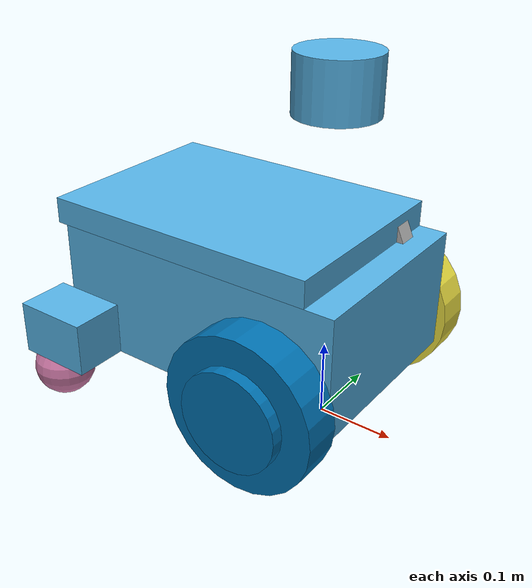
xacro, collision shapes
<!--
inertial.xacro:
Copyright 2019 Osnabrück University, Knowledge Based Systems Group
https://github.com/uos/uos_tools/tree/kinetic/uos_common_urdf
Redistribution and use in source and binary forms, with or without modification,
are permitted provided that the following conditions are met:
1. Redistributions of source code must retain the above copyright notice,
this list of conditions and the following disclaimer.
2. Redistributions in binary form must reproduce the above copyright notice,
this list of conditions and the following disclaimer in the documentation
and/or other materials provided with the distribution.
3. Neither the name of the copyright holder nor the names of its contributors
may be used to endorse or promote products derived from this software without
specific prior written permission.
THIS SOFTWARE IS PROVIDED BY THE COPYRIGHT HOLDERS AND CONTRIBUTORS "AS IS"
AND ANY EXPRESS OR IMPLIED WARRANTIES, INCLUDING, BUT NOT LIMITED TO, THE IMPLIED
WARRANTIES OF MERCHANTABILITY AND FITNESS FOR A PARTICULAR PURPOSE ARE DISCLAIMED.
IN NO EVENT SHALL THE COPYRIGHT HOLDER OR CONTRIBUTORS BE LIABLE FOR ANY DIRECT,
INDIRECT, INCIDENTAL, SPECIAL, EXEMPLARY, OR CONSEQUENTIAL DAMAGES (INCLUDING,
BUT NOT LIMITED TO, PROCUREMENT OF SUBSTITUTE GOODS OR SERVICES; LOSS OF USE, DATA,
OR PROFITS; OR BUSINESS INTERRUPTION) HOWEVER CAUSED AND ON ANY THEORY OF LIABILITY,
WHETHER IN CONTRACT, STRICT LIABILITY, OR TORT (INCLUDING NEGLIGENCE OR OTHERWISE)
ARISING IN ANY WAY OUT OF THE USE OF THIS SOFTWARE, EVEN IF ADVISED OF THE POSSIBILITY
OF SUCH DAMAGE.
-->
<?xml version="1.0"?>
<robot xmlns:xacro="http://wiki.ros.org/xacro" name="magni">

  <xacro:arg name="raspicam_mount" default="forward"/>
  <xacro:property name="raspicam_mount" value="$(arg raspicam_mount)"/>

  <xacro:arg name="sonars_installed" default="false"/>
  <xacro:property name="sonars_installed" value="$(arg sonars_installed)"/>

  <xacro:arg name="camera_extrinsics_file" default="-"/>
  <xacro:property name="camera_extrinsics_file" value="$(arg camera_extrinsics_file)"/>

  <xacro:arg name="lidar_installed" default="false"/>
  <xacro:property name="lidar_installed" value="$(arg lidar_installed)"/>

  <xacro:arg name="velodyne_installed" default="true"/>
  <xacro:property name="velodyne_installed" value="$(arg velodyne_installed)"/>

  <xacro:arg name="kinect_installed" default="false"/>
  <xacro:property name="kinect_installed" value="$(arg kinect_installed)"/>

  <xacro:property name="wheel_r" value="0.1" />
  <xacro:property name="wheel_xpos" value="0.11" />

  <xacro:include filename="$(find velodyne_description)/urdf/VLP-16.urdf.xacro" />
  <xacro:include filename="$(find magni_description)/urdf/magni.transmission.xacro" />
  <xacro:include filename="$(find magni_description)/urdf/magni.gazebo.xacro" />
  <xacro:include filename="$(find magni_description)/urdf/inertial.xacro" />
  <xacro:include filename="$(find magni_description)/urdf/sensors/sonar_hc-sr04.xacro" />
  <xacro:include filename="$(find magni_description)/urdf/sensors/raspi_camera.xacro" />
  <xacro:include filename="$(find magni_description)/urdf/sensors/hokuyo_lidar.xacro" />
  <xacro:include filename="$(find magni_description)/urdf/magni.ros2_control.xacro" />

  <!-- First link -->
  <link name="base_footprint"/>

  <!-- Robot base_link -->
  <link name="base_link">
    <visual>
      <origin xyz="${-wheel_xpos} 0 ${-wheel_r+0.071}" rpy="0 0 0" />
      <geometry>
        <mesh filename="package://magni_description/meshes/magni_body.dae" />
      </geometry>
    </visual>

    <visual>
      <origin xyz="${-wheel_xpos-0.169} 0.17 ${-wheel_r+0.09}" rpy="0 0 ${pi}" />
      <geometry>
        <mesh filename="package://magni_description/meshes/caster_wheel.dae" />
      </geometry>
    </visual>

    <visual>
      <origin xyz="${-wheel_xpos-0.169} -0.17 ${-wheel_r+0.09}" rpy="0 0 ${pi}" />
      <geometry>
        <mesh filename="package://magni_description/meshes/caster_wheel.dae" />
      </geometry>
    </visual>

    <collision>
      <origin xyz="${-wheel_xpos} 0 ${-wheel_r+0.151}" rpy="0 0 0" />
      <geometry>
        <box size="0.398 0.268 0.160"/>
      </geometry>
    </collision>

    <collision>
      <origin xyz="${-wheel_xpos-0.026} 0 ${-wheel_r+0.248}" rpy="0 0 0" />
      <geometry>
        <box size="0.375 0.268 0.034"/>
      </geometry>
    </collision>

    <collision>
      <origin xyz="${-wheel_xpos-0.169} 0.169 ${-wheel_r+0.106}" rpy="0 0 0" />
      <geometry>
        <box size="0.1 0.07 0.07"/>
      </geometry>
    </collision>

    <collision>
      <origin xyz="${-wheel_xpos-0.169} -0.169 ${-wheel_r+0.106}" rpy="0 0 0" />
      <geometry>
        <box size="0.1 0.07 0.07"/>
      </geometry>
    </collision>

    <xacro:box_inertial_with_origin  x="0.398" y="0.221" z="0.150" mass="10.0">
      <origin xyz="-0.15 0 0.03" rpy="0 0 0" />
    </xacro:box_inertial_with_origin>
  </link>

  <!-- Fixed offset from the floor to the center of the wheels -->
  <joint name="base_footprint_joint" type="fixed">
    <parent link="base_footprint"/>
    <child link="base_link"/>
    <origin xyz="0 0 ${wheel_r}" rpy="0 0 0"/>
  </joint>

  <!-- Place the batteries in the robot -->
  <xacro:property name = "batt_width"  value = "${5.14*0.0254}"/>
  <xacro:property name = "batt_length" value = "${7.72*0.0254}"/>
  <xacro:property name = "batt_height" value = "${6.22*0.0254}"/>
  <xacro:property name = "batt_mass"   value = "22.45"/>

  <link name = "batteries">
    <xacro:box_inertial_with_origin x="${2*batt_width}" y="${batt_length}" z="${batt_height}" mass="${batt_mass}">
      <origin xyz = "0 0 0" rpy = "0 0 0"/>
    </xacro:box_inertial_with_origin>
  </link>

  <joint name = "battery_to_base_link" type = "fixed">
    <parent link = "base_link"/>
    <child  link = "batteries"/>
    <origin  xyz = "-0.15 0 ${batt_height/2}"/>
  </joint>

  <!-- Macro for defining wheels -->
  <xacro:macro name="wheel" params="prefix reflect">
    <link name="${prefix}_wheel">
      <visual>
        <origin xyz="${-0.071*reflect} 0 0" rpy="0 ${(reflect-1)*pi/2} 0" />
        <geometry>
          <mesh filename="package://magni_description/meshes/front_wheel.dae" />
        </geometry>
      </visual>

      <collision>
        <origin xyz="0 0 0" rpy="0 ${pi/2} 0" />
        <geometry>
          <cylinder radius="${wheel_r}" length="0.05"/>
        </geometry>
      </collision>

      <collision>
        <origin xyz="${0.033*reflect} 0 0" rpy="0 ${pi/2} 0" />
        <geometry>
          <cylinder radius="0.064" length="0.016"/>
        </geometry>
      </collision>

      <xacro:cylinder_inertial_with_origin radius="${wheel_r}" length="0.05" mass="3.34">
        <origin xyz="0 0 0" rpy="0 ${pi/2} 0" />
      </xacro:cylinder_inertial_with_origin>

    </link>
    <joint name="${prefix}_wheel_joint" type="continuous">
      <axis xyz="1 0 0" rpy="0 0 0" />
      <parent link="base_link"/>
      <child link="${prefix}_wheel"/>
      <origin xyz="0 ${0.163*reflect} 0" rpy="0 0 ${pi/2}"/>
    </joint>
  </xacro:macro>

  <xacro:wheel prefix="left" reflect="1"/>
  <xacro:wheel prefix="right" reflect="-1"/>

  <!-- Macro for defining caster wheels -->
  <xacro:macro name="caster_wheel" params="prefix reflect">
    <link name="${prefix}_caster_wheel">
      <collision>
        <origin xyz="${-wheel_xpos-0.19} ${reflect*0.169} ${-wheel_r+0.0435}" rpy="0 0 0" />
        <geometry>
          <sphere radius="0.04"/>
        </geometry>
      </collision>
    </link>

    <joint name="${prefix}_caster_wheel_joint" type="fixed">
      <parent link="base_link"/>
      <child link="${prefix}_caster_wheel"/>
    </joint>
  </xacro:macro>

  <xacro:caster_wheel prefix="left" reflect="1"/>
  <xacro:caster_wheel prefix="right" reflect="-1"/>

  <!-- Define all sonars, if sonars_installed set to 1 -->
  <xacro:if value="${sonars_installed}">
    <xacro:sonar_hc-sr04 name="sonar_0" connected_to="base_link">
      <origin xyz="0.01 -0.14 0.15" rpy="0 0 ${-pi/2}"/>
    </xacro:sonar_hc-sr04>

    <xacro:sonar_hc-sr04 name="sonar_1" connected_to="base_link">
      <origin xyz="0.08 -0.07 0.15" rpy="0 0 0.785"/>
    </xacro:sonar_hc-sr04>

    <xacro:sonar_hc-sr04 name="sonar_2" connected_to="base_link">
      <origin xyz="0.08 -0.01 0.15" rpy="0 0 -0.785"/>
    </xacro:sonar_hc-sr04>

    <xacro:sonar_hc-sr04 name="sonar_3" connected_to="base_link">
      <origin xyz="0.08 0.04 0.15" rpy="0 0 0"/>
    </xacro:sonar_hc-sr04>

    <xacro:sonar_hc-sr04 name="sonar_4" connected_to="base_link">
      <origin xyz="0.01 0.14 0.15" rpy="0 0 ${pi/2}"/>
    </xacro:sonar_hc-sr04>
  </xacro:if>

  <!-- If we are given an extrinsics calibration use that instead of the pre-configured pose -->
  <xacro:if value="${camera_extrinsics_file != '-'}">
    <xacro:property name="cam_extrinsics" value="${load_yaml(camera_extrinsics_file)}"/>
    <xacro:property name="cam_position" value="${cam_extrinsics['position']}"/>
    <xacro:property name="cam_orientation" value="${cam_extrinsics['orientation']}"/>

    <xacro:raspi_camera name="raspicam" connected_to="base_link">
      <origin xyz="${cam_position['x']} ${cam_position['y']} ${cam_position['z']}"
        rpy="${cam_orientation['r']} ${cam_orientation['p']} ${cam_orientation['y']}"/>
    </xacro:raspi_camera>
  </xacro:if>

  <xacro:if value="${camera_extrinsics_file == '-'}">

    <!-- Define raspicam based on the raspicam_mount argument -->
    <!-- forward  Forward and tilted slightly upwards         -->
    <!-- upward   Pointing straight up                        -->
    <!-- downward High on post and pointing 45 degree down    -->
    <!-- ahead    Directly facing forward with no tilt        -->
    <xacro:if value="${raspicam_mount == 'forward'}">
      <xacro:raspi_camera name="raspicam" connected_to="base_link">
        <origin xyz="0.050 0.085 0.135" rpy="1.15191731 0 1.5707"/>
      </xacro:raspi_camera>
    </xacro:if>

    <xacro:if value="${raspicam_mount == 'upward'}">
      <xacro:raspi_camera name="raspicam" connected_to="base_link">
        <origin xyz="0.020 0.115 0.155" rpy="0 0 ${pi}"/>
      </xacro:raspi_camera>
    </xacro:if>

    <xacro:if value="${raspicam_mount == 'downward'}">
      <xacro:raspi_camera name="raspicam" connected_to="base_link">
        <origin xyz="0.1 0.090 0.145" rpy="3.14159 -1.25 0.0"/>
      </xacro:raspi_camera>
    </xacro:if>

    <xacro:if value="${raspicam_mount == 'ahead'}">
      <xacro:raspi_camera name="raspicam" connected_to="base_link">
        <origin xyz="0.095 0.061 0.10" rpy="0 1.5707 0"/>
      </xacro:raspi_camera>
    </xacro:if>

  </xacro:if>

  <xacro:if value="${lidar_installed}">
    <xacro:hokuyo_lidar name="laser" connected_to="base_link">
      <origin xyz="0 0.0 0.2" rpy="0 0 0"/>
    </xacro:hokuyo_lidar>
  </xacro:if>

  <xacro:if value="${kinect_installed}">
    <xacro:sensor_d435  parent="base_link">
      <origin xyz="0.095 0.061 0.1" rpy="0 0 0"/>
    </xacro:sensor_d435>
  </xacro:if>

  <xacro:if value="${velodyne_installed}">
    <xacro:VLP-16 name="velodyne" gpu="true" min_range="0.10" collision_range="0.07">
        <origin xyz="0 0.0 0.3" rpy="0 0 0"/>
    </xacro:VLP-16>
  </xacro:if>

  <xacro:magni_ros2_control name="magni" prefix=""/>

</robot>

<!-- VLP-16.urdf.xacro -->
<robot xmlns:xacro="http://www.ros.org/wiki/xacro" name="VLP-16">
  <xacro:property name="M_PI" value="3.1415926535897931" />
  <xacro:macro name="VLP-16" params="*origin is_sim:=true parent:=base_link name:=velodyne tf_prefix:='' topic:=/velodyne_points organize_cloud:=false hz:=10 lasers:=16 samples:=1875 collision_range:=0.3 min_range:=0.0 max_range:=100.0 noise:=0.008 min_angle:=-${M_PI} max_angle:=${M_PI} gpu:=false">

    <joint name="${name}_base_mount_joint" type="fixed">
      <xacro:insert_block name="origin" />
      <parent link="${parent}"/>
      <child link="${name}_base_link"/>
    </joint>

    <link name="${name}_base_link">
      <inertial>
        <mass value="0.83"/>
        <origin xyz="0 0 0.03585"/>
        <inertia ixx="${(0.83 * (3.0*0.0516*0.0516 + 0.0717*0.0717)) / 12.0}" ixy="0" ixz="0"
          iyy="${(0.83 * (3.0*0.0516*0.0516 + 0.0717*0.0717)) / 12.0}" iyz="0"
          izz="${0.5 * 0.83 * (0.0516*0.0516)}"/>
      </inertial>
      <visual>
        <geometry>
          <mesh filename="package://velodyne_description/meshes/VLP16_base_1.dae" />
        </geometry>
      </visual>
      <visual>
        <geometry>
          <mesh filename="package://velodyne_description/meshes/VLP16_base_2.dae" />
        </geometry>
      </visual>
      <collision>
        <origin rpy="0 0 0" xyz="0 0 0.03585"/>
        <geometry>
          <cylinder radius="0.0516" length="0.0717"/>
        </geometry>
      </collision>
    </link>

    <joint name="${name}_base_scan_joint" type="fixed" >
      <origin xyz="0 0 0.0377" rpy="0 0 0" />
      <parent link="${name}_base_link" />
      <child link="${name}"/>
    </joint>

    <link name="${name}">
      <inertial>
        <mass value="0.01"/>
        <origin xyz="0 0 0"/>
        <inertia ixx="1e-7" ixy="0" ixz="0" iyy="1e-7" iyz="0" izz="1e-7"/>
      </inertial>
      <visual>
        <origin xyz="0 0 -0.0377" />
        <geometry>
          <mesh filename="package://velodyne_description/meshes/VLP16_scan.dae" />
        </geometry>
      </visual>
      <collision>
        <geometry>
          <sphere radius="0"/>
        </geometry>
      </collision>
    </link>

    <!-- Gazebo requires the velodyne_gazebo_plugins package -->
    <xacro:if value="${is_sim}">
        <gazebo reference="${name}">
            <xacro:if value="${gpu}">
                <sensor type="gpu_ray" name="${name}-VLP16">
                <pose>0 0 0 0 0 0</pose>
                <visualize>false</visualize>
                <update_rate>${hz}</update_rate>
                <ray>
                    <scan>
                    <horizontal>
                        <samples>${samples}</samples>
                        <resolution>1</resolution>
                        <min_angle>${min_angle}</min_angle>
                        <max_angle>${max_angle}</max_angle>
                    </horizontal>
                    <vertical>
                        <samples>${lasers}</samples>
                        <resolution>1</resolution>
                        <min_angle>-${15.0*M_PI/180.0}</min_angle>
                        <max_angle> ${15.0*M_PI/180.0}</max_angle>
                    </vertical>
                    </scan>
                    <range>
                    <min>${collision_range}</min>
                    <max>${max_range+1}</max>
                    <resolution>0.001</resolution>
                    </range>
                    <noise>
                    <type>gaussian</type>
                    <mean>0.0</mean>
                    <stddev>0.0</stddev>
                    </noise>
                </ray>
                <plugin name="gazebo_ros_laser_controller" filename="libgazebo_ros_velodyne_laser.so">
                    <ros>
                    <namespace>/${name}</namespace>
                    <remapping>~/out:=${topic}</remapping>
                    </ros>
                    <tf_prefix>${tf_prefix}</tf_prefix>
                    <frame_name>${name}</frame_name>
                    <organize_cloud>${organize_cloud}</organize_cloud>
                    <min_range>${min_range}</min_range>
                    <max_range>${max_range}</max_range>
                    <gaussian_noise>${noise}</gaussian_noise>
                </plugin>
                </sensor>
            </xacro:if>
            <xacro:unless value="${gpu}">
                <sensor type="ray" name="${name}-VLP16">
                <pose>0 0 0 0 0 0</pose>
                <visualize>false</visualize>
                <update_rate>${hz}</update_rate>
                <ray>
                    <scan>
                    <horizontal>
                        <samples>${samples}</samples>
                        <resolution>1</resolution>
                        <min_angle>${min_angle}</min_angle>
                        <max_angle>${max_angle}</max_angle>
                    </horizontal>
                    <vertical>
                        <samples>${lasers}</samples>
                        <resolution>1</resolution>
                        <min_angle>-${15.0*M_PI/180.0}</min_angle>
                        <max_angle> ${15.0*M_PI/180.0}</max_angle>
                    </vertical>
                    </scan>
                    <range>
                    <min>${collision_range}</min>
                    <max>${max_range+1}</max>
                    <resolution>0.001</resolution>
                    </range>
                    <noise>
                    <type>gaussian</type>
                    <mean>0.0</mean>
                    <stddev>0.0</stddev>
                    </noise>
                </ray>
                <plugin name="gazebo_ros_laser_controller" filename="libgazebo_ros_velodyne_laser.so">
                    <ros>
                    <namespace>/${name}</namespace>
                    <remapping>~/out:=${topic}</remapping>
                    </ros>
                    <tf_prefix>${tf_prefix}</tf_prefix>
                    <frame_name>${name}</frame_name>
                    <organize_cloud>${organize_cloud}</organize_cloud>
                    <min_range>${min_range}</min_range>
                    <max_range>${max_range}</max_range>
                    <gaussian_noise>${noise}</gaussian_noise>
                </plugin>
                </sensor>
            </xacro:unless>
        </gazebo>
    </xacro:if>

  </xacro:macro>
</robot>

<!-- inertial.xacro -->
<robot xmlns:xacro="http://wiki.ros.org/xacro">
    <property name="M_PI" value="3.1415926535897931" />

    <!-- see https://secure.wikimedia.org/wikipedia/en/wiki/List_of_moment_of_inertia_tensors -->

    <!-- #################### versions without origin #################### -->
    <xacro:macro name="sphere_inertial" params="radius mass">
        <inertial>
            <mass value="${mass}" />
            <origin xyz="0 0 0" />
            <inertia ixx="${0.4 * mass * radius * radius}" ixy="0.0" ixz="0.0"
                     iyy="${0.4 * mass * radius * radius}" iyz="0.0"
                     izz="${0.4 * mass * radius * radius}" />
        </inertial>
    </xacro:macro>

    <xacro:macro name="cylinder_inertial" params="radius length mass">
        <inertial>
            <mass value="${mass}" />
            <origin xyz="0 0 0" />
            <inertia ixx="${0.0833333 * mass * (3 * radius * radius + length * length)}" ixy="0.0" ixz="0.0"
                     iyy="${0.0833333 * mass * (3 * radius * radius + length * length)}" iyz="0.0"
                     izz="${0.5 * mass * radius * radius}" />
        </inertial>
    </xacro:macro>

    <xacro:macro name="box_inertial" params="x y z mass">
        <inertial>
            <mass value="${mass}" />
            <origin xyz="0 0 0" />
            <inertia ixx="${0.0833333 * mass * (y*y + z*z)}" ixy="0.0" ixz="0.0"
                     iyy="${0.0833333 * mass * (x*x + z*z)}" iyz="0.0"
                     izz="${0.0833333 * mass * (x*x + y*y)}" />
        </inertial>
    </xacro:macro>

    <!-- #################### versions with origin #################### -->
    <xacro:macro name="sphere_inertial_with_origin" params="radius mass *origin">
        <inertial>
            <mass value="${mass}" />
            <xacro:insert_block name="origin" />
            <inertia ixx="${0.4 * mass * radius * radius}" ixy="0.0" ixz="0.0"
                     iyy="${0.4 * mass * radius * radius}" iyz="0.0"
                     izz="${0.4 * mass * radius * radius}" />
        </inertial>
    </xacro:macro>

    <xacro:macro name="cylinder_inertial_with_origin" params="radius length mass *origin">
        <inertial>
            <mass value="${mass}" />
            <xacro:insert_block name="origin" />
            <inertia ixx="${0.0833333 * mass * (3 * radius * radius + length * length)}" ixy="0.0" ixz="0.0"
                     iyy="${0.0833333 * mass * (3 * radius * radius + length * length)}" iyz="0.0"
                     izz="${0.5 * mass * radius * radius}" />
        </inertial>
    </xacro:macro>

    <xacro:macro name="box_inertial_with_origin" params="x y z mass *origin">
        <inertial>
            <mass value="${mass}" />
            <xacro:insert_block name="origin" />
            <inertia ixx="${0.0833333 * mass * (y*y + z*z)}" ixy="0.0" ixz="0.0"
                     iyy="${0.0833333 * mass * (x*x + z*z)}" iyz="0.0"
                     izz="${0.0833333 * mass * (x*x + y*y)}" />
        </inertial>
    </xacro:macro>

</robot>

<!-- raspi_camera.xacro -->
<robot xmlns:xacro="http://wiki.ros.org/xacro">

  <xacro:macro name="raspi_camera" params="name:='' connected_to:='' *origin">

    <xacro:unless value="${connected_to == ''}">
      <joint name="${name}_joint" type="fixed">
        <parent link="${connected_to}"/>
        <child link="${name}"/>
        <xacro:insert_block name="origin"/>
      </joint>
    </xacro:unless>

    <link name="${name}">
      <visual>
        <origin xyz="0 0 0" rpy="0 0 ${-pi/2}" />
        <geometry>
          <mesh filename="$(find magni_description)/meshes/sensors/raspi_camera.dae" />
        </geometry>
      </visual>
      <collision>
        <origin xyz="0 0 0" rpy="0 0 ${pi/2}" />
        <geometry>
          <box size="0.03 0.026 0.016"/>
        </geometry>
      </collision>
    </link>

    <!-- Additional link for camera sensor -->
    <link name="${name}_sensor"/>
    <joint name="${name}_sensor_joint" type="fixed">
      <parent link="${name}"/>
      <child link="${name}_sensor"/>
      <origin xyz="0.005 0 0" rpy="${-pi/2} 0 ${-pi/2}" />
    </joint>

    <!-- Gazebo sensor plugin. Gazebo sensor is attached to camera link (${name}) but publishes its messages to ${name}_sensor frame. -->
    <gazebo reference="${name}">
      <sensor type="camera" name="camera1">
        <visualize>false</visualize>
        <update_rate>30.0</update_rate>
        <camera name="raspi_camera">
          <horizontal_fov>1.086</horizontal_fov>
          <image>
            <width>640</width>
            <height>480</height>
            <format>R8G8B8</format>
          </image>
          <clip>
            <near>0.02</near>
            <far>300</far>
          </clip>
        </camera>
        <!-- Gazebo-ROS interface plugin -->
        <plugin name="camera_controller" filename="libgazebo_ros_camera.so">
          <alwaysOn>true</alwaysOn>
          <updateRate>0.0</updateRate>
          <cameraName></cameraName>
          <imageTopicName>${name}_node/image</imageTopicName>
          <cameraInfoTopicName>${name}_node/camera_info</cameraInfoTopicName>
          <frameName>${name}_sensor</frameName>
          <hackBaseline>0.07</hackBaseline>
          <distortionK1>0.0</distortionK1>
          <distortionK2>0.0</distortionK2>
          <distortionK3>0.0</distortionK3>
          <distortionT1>0.0</distortionT1>
          <distortionT2>0.0</distortionT2>
        </plugin>
      </sensor>
    </gazebo>

  </xacro:macro>

</robot>
